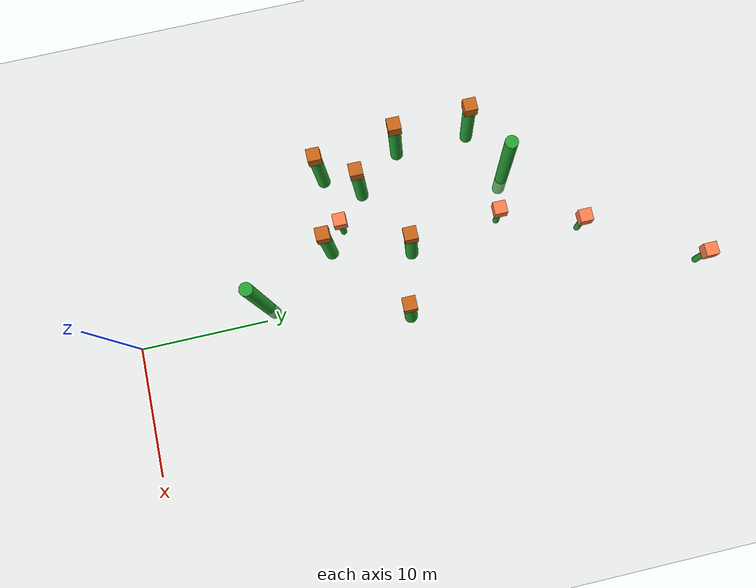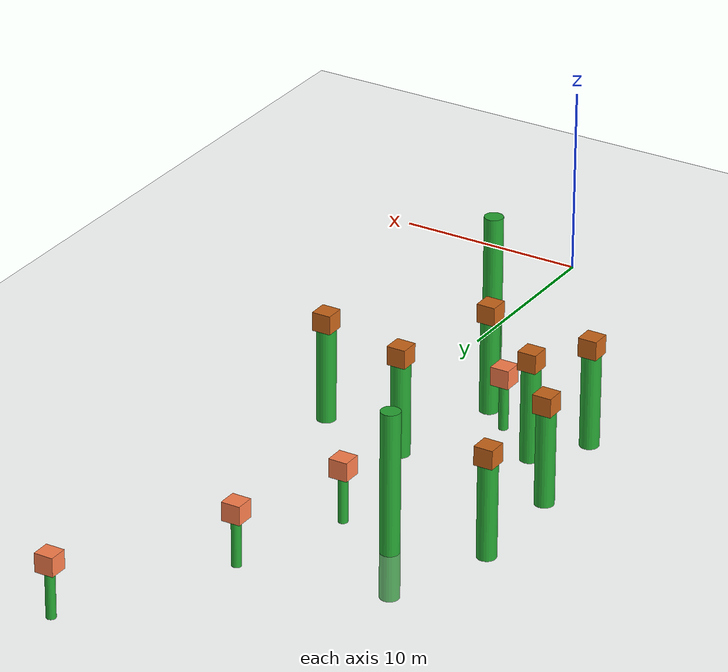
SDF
<sdf version="1.7">
 <world name="default">
  <model name="ground_plane">
   <static>1</static>
   <link name="link">
    <collision name="collision">
     <geometry><plane><normal>0 0 1</normal><size>100 100</size></plane></geometry>
     <surface>
      <contact><collide_bitmask>65535</collide_bitmask></contact>
      <friction><ode><mu>100</mu><mu2>50</mu2></ode></friction>
     </surface>
    </collision>
    <visual name="visual">
     <cast_shadows>0</cast_shadows>
     <geometry><plane><normal>0 0 1</normal><size>100 100</size></plane></geometry>
     <material>
      <script><uri>file://media/materials/scripts/gazebo.material</uri><name>Gazebo/Grey</name></script>
     </material>
    </visual>
   </link>
  </model>
  <model name="unit_cylinder_green_2_clone_clone_2">
   <link name="link">
    <inertial>
     <mass>1</mass>
     <inertia><ixx>0.145833</ixx><ixy>0</ixy><ixz>0</ixz><iyy>0.145833</iyy><iyz>0</iyz><izz>0.125</izz></inertia>
    </inertial>
    <visual name="visual">
     <geometry><cylinder><radius>0.5</radius><length>10</length></cylinder></geometry>
     <material>
      <script><name>Gazebo/Green</name><uri>file://media/materials/scripts/gazebo.material</uri></script>
      <shader type="pixel"><normal_map>__default__</normal_map></shader>
      <ambient>0 1 0.3 1</ambient>
      <diffuse>0.7 0.7 0.7 1</diffuse>
      <specular>0.01 0.01 0.01 1</specular>
      <emissive>0 0 0 1</emissive>
     </material>
    </visual>
    <collision name="collision">
     <geometry><cylinder><radius>0.5</radius><length>5</length></cylinder></geometry>
     <surface>
      <friction>
       <ode><mu>1</mu><mu2>1</mu2><fdir1>0 0 0</fdir1><slip1>0</slip1><slip2>0</slip2></ode>
       <torsional>
        <coefficient>1</coefficient>
        <patch_radius>0</patch_radius>
        <surface_radius>0</surface_radius>
        <use_patch_radius>1</use_patch_radius>
        <ode><slip>0</slip></ode>
       </torsional>
      </friction>
      <bounce><restitution_coefficient>0</restitution_coefficient><threshold>1e+06</threshold></bounce>
      <contact>
       <collide_without_contact>0</collide_without_contact>
       <collide_without_contact_bitmask>1</collide_without_contact_bitmask>
       <collide_bitmask>1</collide_bitmask>
       <ode>
        <soft_cfm>0</soft_cfm>
        <soft_erp>0.2</soft_erp>
        <kp>1e+13</kp>
        <kd>1</kd>
        <max_vel>0.01</max_vel>
        <min_depth>0</min_depth>
       </ode>
       <bullet>
        <split_impulse>1</split_impulse>
        <split_impulse_penetration_threshold>-0.01</split_impulse_penetration_threshold>
        <soft_cfm>0</soft_cfm>
        <soft_erp>0.2</soft_erp>
        <kp>1e+13</kp>
        <kd>1</kd>
       </bullet>
      </contact>
     </surface>
    </collision>
   </link>
   <static>1</static>
   <pose>-1.02596 10.3095 2.5 0 0 -0.000967</pose>
  </model>
  <model name="unit_cylinder_green_2_clone_clone_10">
   <link name="link">
    <inertial>
     <mass>1</mass>
     <inertia><ixx>0.145833</ixx><ixy>0</ixy><ixz>0</ixz><iyy>0.145833</iyy><iyz>0</iyz><izz>0.125</izz></inertia>
    </inertial>
    <visual name="visual">
     <geometry><cylinder><radius>0.5</radius><length>10</length></cylinder></geometry>
     <material>
      <script><name>Gazebo/Green</name><uri>file://media/materials/scripts/gazebo.material</uri></script>
      <shader type="pixel"><normal_map>__default__</normal_map></shader>
      <ambient>0 1 0.3 1</ambient>
      <diffuse>0.7 0.7 0.7 1</diffuse>
      <specular>0.01 0.01 0.01 1</specular>
      <emissive>0 0 0 1</emissive>
     </material>
    </visual>
    <collision name="collision">
     <geometry><cylinder><radius>0.5</radius><length>5</length></cylinder></geometry>
     <surface>
      <friction>
       <ode><mu>1</mu><mu2>1</mu2><fdir1>0 0 0</fdir1><slip1>0</slip1><slip2>0</slip2></ode>
       <torsional>
        <coefficient>1</coefficient>
        <patch_radius>0</patch_radius>
        <surface_radius>0</surface_radius>
        <use_patch_radius>1</use_patch_radius>
        <ode><slip>0</slip></ode>
       </torsional>
      </friction>
      <bounce><restitution_coefficient>0</restitution_coefficient><threshold>1e+06</threshold></bounce>
      <contact>
       <collide_without_contact>0</collide_without_contact>
       <collide_without_contact_bitmask>1</collide_without_contact_bitmask>
       <collide_bitmask>1</collide_bitmask>
       <ode>
        <soft_cfm>0</soft_cfm>
        <soft_erp>0.2</soft_erp>
        <kp>1e+13</kp>
        <kd>1</kd>
        <max_vel>0.01</max_vel>
        <min_depth>0</min_depth>
       </ode>
       <bullet>
        <split_impulse>1</split_impulse>
        <split_impulse_penetration_threshold>-0.01</split_impulse_penetration_threshold>
        <soft_cfm>0</soft_cfm>
        <soft_erp>0.2</soft_erp>
        <kp>1e+13</kp>
        <kd>1</kd>
       </bullet>
      </contact>
     </surface>
    </collision>
   </link>
   <static>1</static>
   <pose>-7.30814 30.7862 2.5 0 0 -0.000967</pose>
  </model>
  <model name="unit_cylinder_green_2_clone_clone_3_clone_0_clone_0_clone_1">
   <link name="link">
    <inertial>
     <mass>1</mass>
     <inertia><ixx>0.145833</ixx><ixy>0</ixy><ixz>0</ixz><iyy>0.145833</iyy><iyz>0</iyz><izz>0.125</izz></inertia>
    </inertial>
    <visual name="visual">
     <geometry><cylinder><radius>0.5</radius><length>5</length></cylinder></geometry>
     <material>
      <script><name>Gazebo/Green</name><uri>file://media/materials/scripts/gazebo.material</uri></script>
      <shader type="pixel"><normal_map>__default__</normal_map></shader>
      <ambient>0 1 0.3 1</ambient>
      <diffuse>0.7 0.7 0.7 1</diffuse>
      <specular>0.01 0.01 0.01 1</specular>
      <emissive>0 0 0 1</emissive>
     </material>
    </visual>
    <collision name="collision">
     <geometry><cylinder><radius>0.5</radius><length>5</length></cylinder></geometry>
     <surface>
      <friction>
       <ode><mu>1</mu><mu2>1</mu2><fdir1>0 0 0</fdir1><slip1>0</slip1><slip2>0</slip2></ode>
       <torsional>
        <coefficient>1</coefficient>
        <patch_radius>0</patch_radius>
        <surface_radius>0</surface_radius>
        <use_patch_radius>1</use_patch_radius>
        <ode><slip>0</slip></ode>
       </torsional>
      </friction>
      <bounce><restitution_coefficient>0</restitution_coefficient><threshold>1e+06</threshold></bounce>
      <contact>
       <collide_without_contact>0</collide_without_contact>
       <collide_without_contact_bitmask>1</collide_without_contact_bitmask>
       <collide_bitmask>1</collide_bitmask>
       <ode>
        <soft_cfm>0</soft_cfm>
        <soft_erp>0.2</soft_erp>
        <kp>1e+13</kp>
        <kd>1</kd>
        <max_vel>0.01</max_vel>
        <min_depth>0</min_depth>
       </ode>
       <bullet>
        <split_impulse>1</split_impulse>
        <split_impulse_penetration_threshold>-0.01</split_impulse_penetration_threshold>
        <soft_cfm>0</soft_cfm>
        <soft_erp>0.2</soft_erp>
        <kp>1e+13</kp>
        <kd>1</kd>
       </bullet>
      </contact>
     </surface>
    </collision>
   </link>
   <link name="link_3">
    <inertial>
     <mass>1</mass>
     <inertia>
      <ixx>0.166667</ixx>
      <ixy>0</ixy>
      <ixz>0</ixz>
      <iyy>0.166667</iyy>
      <iyz>0</iyz>
      <izz>0.166667</izz>
     </inertia>
    </inertial>
    <pose>0 0 3 0 -0 0.000935</pose>
    <visual name="visual">
     <geometry><box><size>1 1 1</size></box></geometry>
     <material>
      <lighting>1</lighting>
      <script><uri>file://media/materials/scripts/gazebo.material</uri><name>Gazebo/Grey</name></script>
      <shader type="pixel"><normal_map>__default__</normal_map></shader>
      <ambient>0.8 0.4 0.1 1</ambient>
      <diffuse>0.7 0.7 0.7 1</diffuse>
      <specular>0.01 0.01 0.01 1</specular>
      <emissive>0 0 0 1</emissive>
     </material>
    </visual>
    <collision name="collision">
     <geometry><box><size>1 1 1</size></box></geometry>
     <surface>
      <friction>
       <ode><mu>1</mu><mu2>1</mu2><fdir1>0 0 0</fdir1><slip1>0</slip1><slip2>0</slip2></ode>
       <torsional>
        <coefficient>1</coefficient>
        <patch_radius>0</patch_radius>
        <surface_radius>0</surface_radius>
        <use_patch_radius>1</use_patch_radius>
        <ode><slip>0</slip></ode>
       </torsional>
      </friction>
      <bounce><restitution_coefficient>0</restitution_coefficient><threshold>1e+06</threshold></bounce>
      <contact>
       <collide_without_contact>0</collide_without_contact>
       <collide_without_contact_bitmask>1</collide_without_contact_bitmask>
       <collide_bitmask>1</collide_bitmask>
       <ode>
        <soft_cfm>0</soft_cfm>
        <soft_erp>0.2</soft_erp>
        <kp>1e+13</kp>
        <kd>1</kd>
        <max_vel>0.01</max_vel>
        <min_depth>0</min_depth>
       </ode>
       <bullet>
        <split_impulse>1</split_impulse>
        <split_impulse_penetration_threshold>-0.01</split_impulse_penetration_threshold>
        <soft_cfm>0</soft_cfm>
        <soft_erp>0.2</soft_erp>
        <kp>1e+13</kp>
        <kd>1</kd>
       </bullet>
      </contact>
     </surface>
    </collision>
   </link>
   <static>1</static>
   <pose>-10.2199 16.6539 2.49999 0 0 -0.000935</pose>
  </model>
  <model name="unit_cylinder_green_2_clone_clone_3_clone_0_clone_0_clone_2">
   <link name="link">
    <inertial>
     <mass>1</mass>
     <inertia><ixx>0.145833</ixx><ixy>0</ixy><ixz>0</ixz><iyy>0.145833</iyy><iyz>0</iyz><izz>0.125</izz></inertia>
    </inertial>
    <visual name="visual">
     <geometry><cylinder><radius>0.5</radius><length>5</length></cylinder></geometry>
     <material>
      <script><name>Gazebo/Green</name><uri>file://media/materials/scripts/gazebo.material</uri></script>
      <shader type="pixel"><normal_map>__default__</normal_map></shader>
      <ambient>0 1 0.3 1</ambient>
      <diffuse>0.7 0.7 0.7 1</diffuse>
      <specular>0.01 0.01 0.01 1</specular>
      <emissive>0 0 0 1</emissive>
     </material>
    </visual>
    <collision name="collision">
     <geometry><cylinder><radius>0.5</radius><length>5</length></cylinder></geometry>
     <surface>
      <friction>
       <ode><mu>1</mu><mu2>1</mu2><fdir1>0 0 0</fdir1><slip1>0</slip1><slip2>0</slip2></ode>
       <torsional>
        <coefficient>1</coefficient>
        <patch_radius>0</patch_radius>
        <surface_radius>0</surface_radius>
        <use_patch_radius>1</use_patch_radius>
        <ode><slip>0</slip></ode>
       </torsional>
      </friction>
      <bounce><restitution_coefficient>0</restitution_coefficient><threshold>1e+06</threshold></bounce>
      <contact>
       <collide_without_contact>0</collide_without_contact>
       <collide_without_contact_bitmask>1</collide_without_contact_bitmask>
       <collide_bitmask>1</collide_bitmask>
       <ode>
        <soft_cfm>0</soft_cfm>
        <soft_erp>0.2</soft_erp>
        <kp>1e+13</kp>
        <kd>1</kd>
        <max_vel>0.01</max_vel>
        <min_depth>0</min_depth>
       </ode>
       <bullet>
        <split_impulse>1</split_impulse>
        <split_impulse_penetration_threshold>-0.01</split_impulse_penetration_threshold>
        <soft_cfm>0</soft_cfm>
        <soft_erp>0.2</soft_erp>
        <kp>1e+13</kp>
        <kd>1</kd>
       </bullet>
      </contact>
     </surface>
    </collision>
   </link>
   <link name="link_3">
    <inertial>
     <mass>1</mass>
     <inertia>
      <ixx>0.166667</ixx>
      <ixy>0</ixy>
      <ixz>0</ixz>
      <iyy>0.166667</iyy>
      <iyz>0</iyz>
      <izz>0.166667</izz>
     </inertia>
    </inertial>
    <pose>0 0 3 0 -0 0.000935</pose>
    <visual name="visual">
     <geometry><box><size>1 1 1</size></box></geometry>
     <material>
      <lighting>1</lighting>
      <script><uri>file://media/materials/scripts/gazebo.material</uri><name>Gazebo/Grey</name></script>
      <shader type="pixel"><normal_map>__default__</normal_map></shader>
      <ambient>0.8 0.4 0.1 1</ambient>
      <diffuse>0.7 0.7 0.7 1</diffuse>
      <specular>0.01 0.01 0.01 1</specular>
      <emissive>0 0 0 1</emissive>
     </material>
    </visual>
    <collision name="collision">
     <geometry><box><size>1 1 1</size></box></geometry>
     <surface>
      <friction>
       <ode><mu>1</mu><mu2>1</mu2><fdir1>0 0 0</fdir1><slip1>0</slip1><slip2>0</slip2></ode>
       <torsional>
        <coefficient>1</coefficient>
        <patch_radius>0</patch_radius>
        <surface_radius>0</surface_radius>
        <use_patch_radius>1</use_patch_radius>
        <ode><slip>0</slip></ode>
       </torsional>
      </friction>
      <bounce><restitution_coefficient>0</restitution_coefficient><threshold>1e+06</threshold></bounce>
      <contact>
       <collide_without_contact>0</collide_without_contact>
       <collide_without_contact_bitmask>1</collide_without_contact_bitmask>
       <collide_bitmask>1</collide_bitmask>
       <ode>
        <soft_cfm>0</soft_cfm>
        <soft_erp>0.2</soft_erp>
        <kp>1e+13</kp>
        <kd>1</kd>
        <max_vel>0.01</max_vel>
        <min_depth>0</min_depth>
       </ode>
       <bullet>
        <split_impulse>1</split_impulse>
        <split_impulse_penetration_threshold>-0.01</split_impulse_penetration_threshold>
        <soft_cfm>0</soft_cfm>
        <soft_erp>0.2</soft_erp>
        <kp>1e+13</kp>
        <kd>1</kd>
       </bullet>
      </contact>
     </surface>
    </collision>
   </link>
   <static>1</static>
   <pose>-4.21077 16.0878 2.49999 0 0 -0.000935</pose>
  </model>
  <model name="unit_cylinder_green_2_clone_clone_3_clone_0_clone_0_clone_4">
   <link name="link">
    <inertial>
     <mass>1</mass>
     <inertia><ixx>0.145833</ixx><ixy>0</ixy><ixz>0</ixz><iyy>0.145833</iyy><iyz>0</iyz><izz>0.125</izz></inertia>
    </inertial>
    <visual name="visual">
     <geometry><cylinder><radius>0.5</radius><length>5</length></cylinder></geometry>
     <material>
      <script><name>Gazebo/Green</name><uri>file://media/materials/scripts/gazebo.material</uri></script>
      <shader type="pixel"><normal_map>__default__</normal_map></shader>
      <ambient>0 1 0.3 1</ambient>
      <diffuse>0.7 0.7 0.7 1</diffuse>
      <specular>0.01 0.01 0.01 1</specular>
      <emissive>0 0 0 1</emissive>
     </material>
    </visual>
    <collision name="collision">
     <geometry><cylinder><radius>0.5</radius><length>5</length></cylinder></geometry>
     <surface>
      <friction>
       <ode><mu>1</mu><mu2>1</mu2><fdir1>0 0 0</fdir1><slip1>0</slip1><slip2>0</slip2></ode>
       <torsional>
        <coefficient>1</coefficient>
        <patch_radius>0</patch_radius>
        <surface_radius>0</surface_radius>
        <use_patch_radius>1</use_patch_radius>
        <ode><slip>0</slip></ode>
       </torsional>
      </friction>
      <bounce><restitution_coefficient>0</restitution_coefficient><threshold>1e+06</threshold></bounce>
      <contact>
       <collide_without_contact>0</collide_without_contact>
       <collide_without_contact_bitmask>1</collide_without_contact_bitmask>
       <collide_bitmask>1</collide_bitmask>
       <ode>
        <soft_cfm>0</soft_cfm>
        <soft_erp>0.2</soft_erp>
        <kp>1e+13</kp>
        <kd>1</kd>
        <max_vel>0.01</max_vel>
        <min_depth>0</min_depth>
       </ode>
       <bullet>
        <split_impulse>1</split_impulse>
        <split_impulse_penetration_threshold>-0.01</split_impulse_penetration_threshold>
        <soft_cfm>0</soft_cfm>
        <soft_erp>0.2</soft_erp>
        <kp>1e+13</kp>
        <kd>1</kd>
       </bullet>
      </contact>
     </surface>
    </collision>
   </link>
   <link name="link_3">
    <inertial>
     <mass>1</mass>
     <inertia>
      <ixx>0.166667</ixx>
      <ixy>0</ixy>
      <ixz>0</ixz>
      <iyy>0.166667</iyy>
      <iyz>0</iyz>
      <izz>0.166667</izz>
     </inertia>
    </inertial>
    <pose>0 0 3 0 -0 0.000935</pose>
    <visual name="visual">
     <geometry><box><size>1 1 1</size></box></geometry>
     <material>
      <lighting>1</lighting>
      <script><uri>file://media/materials/scripts/gazebo.material</uri><name>Gazebo/Grey</name></script>
      <shader type="pixel"><normal_map>__default__</normal_map></shader>
      <ambient>0.8 0.4 0.1 1</ambient>
      <diffuse>0.7 0.7 0.7 1</diffuse>
      <specular>0.01 0.01 0.01 1</specular>
      <emissive>0 0 0 1</emissive>
     </material>
    </visual>
    <collision name="collision">
     <geometry><box><size>1 1 1</size></box></geometry>
     <surface>
      <friction>
       <ode><mu>1</mu><mu2>1</mu2><fdir1>0 0 0</fdir1><slip1>0</slip1><slip2>0</slip2></ode>
       <torsional>
        <coefficient>1</coefficient>
        <patch_radius>0</patch_radius>
        <surface_radius>0</surface_radius>
        <use_patch_radius>1</use_patch_radius>
        <ode><slip>0</slip></ode>
       </torsional>
      </friction>
      <bounce><restitution_coefficient>0</restitution_coefficient><threshold>1e+06</threshold></bounce>
      <contact>
       <collide_without_contact>0</collide_without_contact>
       <collide_without_contact_bitmask>1</collide_without_contact_bitmask>
       <collide_bitmask>1</collide_bitmask>
       <ode>
        <soft_cfm>0</soft_cfm>
        <soft_erp>0.2</soft_erp>
        <kp>1e+13</kp>
        <kd>1</kd>
        <max_vel>0.01</max_vel>
        <min_depth>0</min_depth>
       </ode>
       <bullet>
        <split_impulse>1</split_impulse>
        <split_impulse_penetration_threshold>-0.01</split_impulse_penetration_threshold>
        <soft_cfm>0</soft_cfm>
        <soft_erp>0.2</soft_erp>
        <kp>1e+13</kp>
        <kd>1</kd>
       </bullet>
      </contact>
     </surface>
    </collision>
   </link>
   <static>1</static>
   <pose>-2.78766 22.2941 2.49999 0 0 -0.000935</pose>
  </model>
  <model name="unit_cylinder_green_2_clone_clone_3_clone_0_clone_0_clone_18">
   <link name="link">
    <inertial>
     <mass>1</mass>
     <inertia><ixx>0.145833</ixx><ixy>0</ixy><ixz>0</ixz><iyy>0.145833</iyy><iyz>0</iyz><izz>0.125</izz></inertia>
    </inertial>
    <visual name="visual">
     <geometry><cylinder><radius>0.5</radius><length>5</length></cylinder></geometry>
     <material>
      <script><name>Gazebo/Green</name><uri>file://media/materials/scripts/gazebo.material</uri></script>
      <shader type="pixel"><normal_map>__default__</normal_map></shader>
      <ambient>0 1 0.3 1</ambient>
      <diffuse>0.7 0.7 0.7 1</diffuse>
      <specular>0.01 0.01 0.01 1</specular>
      <emissive>0 0 0 1</emissive>
     </material>
    </visual>
    <collision name="collision">
     <geometry><cylinder><radius>0.5</radius><length>5</length></cylinder></geometry>
     <surface>
      <friction>
       <ode><mu>1</mu><mu2>1</mu2><fdir1>0 0 0</fdir1><slip1>0</slip1><slip2>0</slip2></ode>
       <torsional>
        <coefficient>1</coefficient>
        <patch_radius>0</patch_radius>
        <surface_radius>0</surface_radius>
        <use_patch_radius>1</use_patch_radius>
        <ode><slip>0</slip></ode>
       </torsional>
      </friction>
      <bounce><restitution_coefficient>0</restitution_coefficient><threshold>1e+06</threshold></bounce>
      <contact>
       <collide_without_contact>0</collide_without_contact>
       <collide_without_contact_bitmask>1</collide_without_contact_bitmask>
       <collide_bitmask>1</collide_bitmask>
       <ode>
        <soft_cfm>0</soft_cfm>
        <soft_erp>0.2</soft_erp>
        <kp>1e+13</kp>
        <kd>1</kd>
        <max_vel>0.01</max_vel>
        <min_depth>0</min_depth>
       </ode>
       <bullet>
        <split_impulse>1</split_impulse>
        <split_impulse_penetration_threshold>-0.01</split_impulse_penetration_threshold>
        <soft_cfm>0</soft_cfm>
        <soft_erp>0.2</soft_erp>
        <kp>1e+13</kp>
        <kd>1</kd>
       </bullet>
      </contact>
     </surface>
    </collision>
   </link>
   <link name="link_3">
    <inertial>
     <mass>1</mass>
     <inertia>
      <ixx>0.166667</ixx>
      <ixy>0</ixy>
      <ixz>0</ixz>
      <iyy>0.166667</iyy>
      <iyz>0</iyz>
      <izz>0.166667</izz>
     </inertia>
    </inertial>
    <pose>0 0 3 0 -0 0.000935</pose>
    <visual name="visual">
     <geometry><box><size>1 1 1</size></box></geometry>
     <material>
      <lighting>1</lighting>
      <script><uri>file://media/materials/scripts/gazebo.material</uri><name>Gazebo/Grey</name></script>
      <shader type="pixel"><normal_map>__default__</normal_map></shader>
      <ambient>0.8 0.4 0.1 1</ambient>
      <diffuse>0.7 0.7 0.7 1</diffuse>
      <specular>0.01 0.01 0.01 1</specular>
      <emissive>0 0 0 1</emissive>
     </material>
    </visual>
    <collision name="collision">
     <geometry><box><size>1 1 1</size></box></geometry>
     <surface>
      <friction>
       <ode><mu>1</mu><mu2>1</mu2><fdir1>0 0 0</fdir1><slip1>0</slip1><slip2>0</slip2></ode>
       <torsional>
        <coefficient>1</coefficient>
        <patch_radius>0</patch_radius>
        <surface_radius>0</surface_radius>
        <use_patch_radius>1</use_patch_radius>
        <ode><slip>0</slip></ode>
       </torsional>
      </friction>
      <bounce><restitution_coefficient>0</restitution_coefficient><threshold>1e+06</threshold></bounce>
      <contact>
       <collide_without_contact>0</collide_without_contact>
       <collide_without_contact_bitmask>1</collide_without_contact_bitmask>
       <collide_bitmask>1</collide_bitmask>
       <ode>
        <soft_cfm>0</soft_cfm>
        <soft_erp>0.2</soft_erp>
        <kp>1e+13</kp>
        <kd>1</kd>
        <max_vel>0.01</max_vel>
        <min_depth>0</min_depth>
       </ode>
       <bullet>
        <split_impulse>1</split_impulse>
        <split_impulse_penetration_threshold>-0.01</split_impulse_penetration_threshold>
        <soft_cfm>0</soft_cfm>
        <soft_erp>0.2</soft_erp>
        <kp>1e+13</kp>
        <kd>1</kd>
       </bullet>
      </contact>
     </surface>
    </collision>
   </link>
   <static>1</static>
   <pose>-11.4448 28.8184 2.49999 0 0 -0.000935</pose>
  </model>
  <model name="unit_cylinder_green_2_clone_clone_3_clone_0_clone_0_clone_19">
   <link name="link">
    <inertial>
     <mass>1</mass>
     <inertia><ixx>0.145833</ixx><ixy>0</ixy><ixz>0</ixz><iyy>0.145833</iyy><iyz>0</iyz><izz>0.125</izz></inertia>
    </inertial>
    <visual name="visual">
     <geometry><cylinder><radius>0.5</radius><length>5</length></cylinder></geometry>
     <material>
      <script><name>Gazebo/Green</name><uri>file://media/materials/scripts/gazebo.material</uri></script>
      <shader type="pixel"><normal_map>__default__</normal_map></shader>
      <ambient>0 1 0.3 1</ambient>
      <diffuse>0.7 0.7 0.7 1</diffuse>
      <specular>0.01 0.01 0.01 1</specular>
      <emissive>0 0 0 1</emissive>
     </material>
    </visual>
    <collision name="collision">
     <geometry><cylinder><radius>0.5</radius><length>5</length></cylinder></geometry>
     <surface>
      <friction>
       <ode><mu>1</mu><mu2>1</mu2><fdir1>0 0 0</fdir1><slip1>0</slip1><slip2>0</slip2></ode>
       <torsional>
        <coefficient>1</coefficient>
        <patch_radius>0</patch_radius>
        <surface_radius>0</surface_radius>
        <use_patch_radius>1</use_patch_radius>
        <ode><slip>0</slip></ode>
       </torsional>
      </friction>
      <bounce><restitution_coefficient>0</restitution_coefficient><threshold>1e+06</threshold></bounce>
      <contact>
       <collide_without_contact>0</collide_without_contact>
       <collide_without_contact_bitmask>1</collide_without_contact_bitmask>
       <collide_bitmask>1</collide_bitmask>
       <ode>
        <soft_cfm>0</soft_cfm>
        <soft_erp>0.2</soft_erp>
        <kp>1e+13</kp>
        <kd>1</kd>
        <max_vel>0.01</max_vel>
        <min_depth>0</min_depth>
       </ode>
       <bullet>
        <split_impulse>1</split_impulse>
        <split_impulse_penetration_threshold>-0.01</split_impulse_penetration_threshold>
        <soft_cfm>0</soft_cfm>
        <soft_erp>0.2</soft_erp>
        <kp>1e+13</kp>
        <kd>1</kd>
       </bullet>
      </contact>
     </surface>
    </collision>
   </link>
   <link name="link_3">
    <inertial>
     <mass>1</mass>
     <inertia>
      <ixx>0.166667</ixx>
      <ixy>0</ixy>
      <ixz>0</ixz>
      <iyy>0.166667</iyy>
      <iyz>0</iyz>
      <izz>0.166667</izz>
     </inertia>
    </inertial>
    <pose>0 0 3 0 -0 0.000935</pose>
    <visual name="visual">
     <geometry><box><size>1 1 1</size></box></geometry>
     <material>
      <lighting>1</lighting>
      <script><uri>file://media/materials/scripts/gazebo.material</uri><name>Gazebo/Grey</name></script>
      <shader type="pixel"><normal_map>__default__</normal_map></shader>
      <ambient>0.8 0.4 0.1 1</ambient>
      <diffuse>0.7 0.7 0.7 1</diffuse>
      <specular>0.01 0.01 0.01 1</specular>
      <emissive>0 0 0 1</emissive>
     </material>
    </visual>
    <collision name="collision">
     <geometry><box><size>1 1 1</size></box></geometry>
     <surface>
      <friction>
       <ode><mu>1</mu><mu2>1</mu2><fdir1>0 0 0</fdir1><slip1>0</slip1><slip2>0</slip2></ode>
       <torsional>
        <coefficient>1</coefficient>
        <patch_radius>0</patch_radius>
        <surface_radius>0</surface_radius>
        <use_patch_radius>1</use_patch_radius>
        <ode><slip>0</slip></ode>
       </torsional>
      </friction>
      <bounce><restitution_coefficient>0</restitution_coefficient><threshold>1e+06</threshold></bounce>
      <contact>
       <collide_without_contact>0</collide_without_contact>
       <collide_without_contact_bitmask>1</collide_without_contact_bitmask>
       <collide_bitmask>1</collide_bitmask>
       <ode>
        <soft_cfm>0</soft_cfm>
        <soft_erp>0.2</soft_erp>
        <kp>1e+13</kp>
        <kd>1</kd>
        <max_vel>0.01</max_vel>
        <min_depth>0</min_depth>
       </ode>
       <bullet>
        <split_impulse>1</split_impulse>
        <split_impulse_penetration_threshold>-0.01</split_impulse_penetration_threshold>
        <soft_cfm>0</soft_cfm>
        <soft_erp>0.2</soft_erp>
        <kp>1e+13</kp>
        <kd>1</kd>
       </bullet>
      </contact>
     </surface>
    </collision>
   </link>
   <static>1</static>
   <pose>-11.2302 22.9274 2.49999 0 0 -0.000935</pose>
  </model>
  <model name="unit_cylinder_green_2_clone_clone_3_clone_0_clone_0_clone_20">
   <link name="link">
    <inertial>
     <mass>1</mass>
     <inertia><ixx>0.145833</ixx><ixy>0</ixy><ixz>0</ixz><iyy>0.145833</iyy><iyz>0</iyz><izz>0.125</izz></inertia>
    </inertial>
    <visual name="visual">
     <geometry><cylinder><radius>0.5</radius><length>5</length></cylinder></geometry>
     <material>
      <script><name>Gazebo/Green</name><uri>file://media/materials/scripts/gazebo.material</uri></script>
      <shader type="pixel"><normal_map>__default__</normal_map></shader>
      <ambient>0 1 0.3 1</ambient>
      <diffuse>0.7 0.7 0.7 1</diffuse>
      <specular>0.01 0.01 0.01 1</specular>
      <emissive>0 0 0 1</emissive>
     </material>
    </visual>
    <collision name="collision">
     <geometry><cylinder><radius>0.5</radius><length>5</length></cylinder></geometry>
     <surface>
      <friction>
       <ode><mu>1</mu><mu2>1</mu2><fdir1>0 0 0</fdir1><slip1>0</slip1><slip2>0</slip2></ode>
       <torsional>
        <coefficient>1</coefficient>
        <patch_radius>0</patch_radius>
        <surface_radius>0</surface_radius>
        <use_patch_radius>1</use_patch_radius>
        <ode><slip>0</slip></ode>
       </torsional>
      </friction>
      <bounce><restitution_coefficient>0</restitution_coefficient><threshold>1e+06</threshold></bounce>
      <contact>
       <collide_without_contact>0</collide_without_contact>
       <collide_without_contact_bitmask>1</collide_without_contact_bitmask>
       <collide_bitmask>1</collide_bitmask>
       <ode>
        <soft_cfm>0</soft_cfm>
        <soft_erp>0.2</soft_erp>
        <kp>1e+13</kp>
        <kd>1</kd>
        <max_vel>0.01</max_vel>
        <min_depth>0</min_depth>
       </ode>
       <bullet>
        <split_impulse>1</split_impulse>
        <split_impulse_penetration_threshold>-0.01</split_impulse_penetration_threshold>
        <soft_cfm>0</soft_cfm>
        <soft_erp>0.2</soft_erp>
        <kp>1e+13</kp>
        <kd>1</kd>
       </bullet>
      </contact>
     </surface>
    </collision>
   </link>
   <link name="link_3">
    <inertial>
     <mass>1</mass>
     <inertia>
      <ixx>0.166667</ixx>
      <ixy>0</ixy>
      <ixz>0</ixz>
      <iyy>0.166667</iyy>
      <iyz>0</iyz>
      <izz>0.166667</izz>
     </inertia>
    </inertial>
    <pose>0 0 3 0 -0 0.000935</pose>
    <visual name="visual">
     <geometry><box><size>1 1 1</size></box></geometry>
     <material>
      <lighting>1</lighting>
      <script><uri>file://media/materials/scripts/gazebo.material</uri><name>Gazebo/Grey</name></script>
      <shader type="pixel"><normal_map>__default__</normal_map></shader>
      <ambient>0.8 0.4 0.1 1</ambient>
      <diffuse>0.7 0.7 0.7 1</diffuse>
      <specular>0.01 0.01 0.01 1</specular>
      <emissive>0 0 0 1</emissive>
     </material>
    </visual>
    <collision name="collision">
     <geometry><box><size>1 1 1</size></box></geometry>
     <surface>
      <friction>
       <ode><mu>1</mu><mu2>1</mu2><fdir1>0 0 0</fdir1><slip1>0</slip1><slip2>0</slip2></ode>
       <torsional>
        <coefficient>1</coefficient>
        <patch_radius>0</patch_radius>
        <surface_radius>0</surface_radius>
        <use_patch_radius>1</use_patch_radius>
        <ode><slip>0</slip></ode>
       </torsional>
      </friction>
      <bounce><restitution_coefficient>0</restitution_coefficient><threshold>1e+06</threshold></bounce>
      <contact>
       <collide_without_contact>0</collide_without_contact>
       <collide_without_contact_bitmask>1</collide_without_contact_bitmask>
       <collide_bitmask>1</collide_bitmask>
       <ode>
        <soft_cfm>0</soft_cfm>
        <soft_erp>0.2</soft_erp>
        <kp>1e+13</kp>
        <kd>1</kd>
        <max_vel>0.01</max_vel>
        <min_depth>0</min_depth>
       </ode>
       <bullet>
        <split_impulse>1</split_impulse>
        <split_impulse_penetration_threshold>-0.01</split_impulse_penetration_threshold>
        <soft_cfm>0</soft_cfm>
        <soft_erp>0.2</soft_erp>
        <kp>1e+13</kp>
        <kd>1</kd>
       </bullet>
      </contact>
     </surface>
    </collision>
   </link>
   <static>1</static>
   <pose>-8.4261 19.4362 2.49999 0 0 -0.000935</pose>
  </model>
  <model name="unit_cylinder_green_2_clone_clone_3_clone_0_clone_0_clone_31">
   <link name="link">
    <inertial>
     <mass>1</mass>
     <inertia><ixx>0.145833</ixx><ixy>0</ixy><ixz>0</ixz><iyy>0.145833</iyy><iyz>0</iyz><izz>0.125</izz></inertia>
    </inertial>
    <visual name="visual">
     <geometry><cylinder><radius>0.5</radius><length>5</length></cylinder></geometry>
     <material>
      <script><name>Gazebo/Green</name><uri>file://media/materials/scripts/gazebo.material</uri></script>
      <shader type="pixel"><normal_map>__default__</normal_map></shader>
      <ambient>0 1 0.3 1</ambient>
      <diffuse>0.7 0.7 0.7 1</diffuse>
      <specular>0.01 0.01 0.01 1</specular>
      <emissive>0 0 0 1</emissive>
     </material>
    </visual>
    <collision name="collision">
     <geometry><cylinder><radius>0.5</radius><length>5</length></cylinder></geometry>
     <surface>
      <friction>
       <ode><mu>1</mu><mu2>1</mu2><fdir1>0 0 0</fdir1><slip1>0</slip1><slip2>0</slip2></ode>
       <torsional>
        <coefficient>1</coefficient>
        <patch_radius>0</patch_radius>
        <surface_radius>0</surface_radius>
        <use_patch_radius>1</use_patch_radius>
        <ode><slip>0</slip></ode>
       </torsional>
      </friction>
      <bounce><restitution_coefficient>0</restitution_coefficient><threshold>1e+06</threshold></bounce>
      <contact>
       <collide_without_contact>0</collide_without_contact>
       <collide_without_contact_bitmask>1</collide_without_contact_bitmask>
       <collide_bitmask>1</collide_bitmask>
       <ode>
        <soft_cfm>0</soft_cfm>
        <soft_erp>0.2</soft_erp>
        <kp>1e+13</kp>
        <kd>1</kd>
        <max_vel>0.01</max_vel>
        <min_depth>0</min_depth>
       </ode>
       <bullet>
        <split_impulse>1</split_impulse>
        <split_impulse_penetration_threshold>-0.01</split_impulse_penetration_threshold>
        <soft_cfm>0</soft_cfm>
        <soft_erp>0.2</soft_erp>
        <kp>1e+13</kp>
        <kd>1</kd>
       </bullet>
      </contact>
     </surface>
    </collision>
   </link>
   <link name="link_3">
    <inertial>
     <mass>1</mass>
     <inertia>
      <ixx>0.166667</ixx>
      <ixy>0</ixy>
      <ixz>0</ixz>
      <iyy>0.166667</iyy>
      <iyz>0</iyz>
      <izz>0.166667</izz>
     </inertia>
    </inertial>
    <pose>0 0 3 0 -0 0.000935</pose>
    <visual name="visual">
     <geometry><box><size>1 1 1</size></box></geometry>
     <material>
      <lighting>1</lighting>
      <script><uri>file://media/materials/scripts/gazebo.material</uri><name>Gazebo/Grey</name></script>
      <shader type="pixel"><normal_map>__default__</normal_map></shader>
      <ambient>0.8 0.4 0.1 1</ambient>
      <diffuse>0.7 0.7 0.7 1</diffuse>
      <specular>0.01 0.01 0.01 1</specular>
      <emissive>0 0 0 1</emissive>
     </material>
    </visual>
    <collision name="collision">
     <geometry><box><size>1 1 1</size></box></geometry>
     <surface>
      <friction>
       <ode><mu>1</mu><mu2>1</mu2><fdir1>0 0 0</fdir1><slip1>0</slip1><slip2>0</slip2></ode>
       <torsional>
        <coefficient>1</coefficient>
        <patch_radius>0</patch_radius>
        <surface_radius>0</surface_radius>
        <use_patch_radius>1</use_patch_radius>
        <ode><slip>0</slip></ode>
       </torsional>
      </friction>
      <bounce><restitution_coefficient>0</restitution_coefficient><threshold>1e+06</threshold></bounce>
      <contact>
       <collide_without_contact>0</collide_without_contact>
       <collide_without_contact_bitmask>1</collide_without_contact_bitmask>
       <collide_bitmask>1</collide_bitmask>
       <ode>
        <soft_cfm>0</soft_cfm>
        <soft_erp>0.2</soft_erp>
        <kp>1e+13</kp>
        <kd>1</kd>
        <max_vel>0.01</max_vel>
        <min_depth>0</min_depth>
       </ode>
       <bullet>
        <split_impulse>1</split_impulse>
        <split_impulse_penetration_threshold>-0.01</split_impulse_penetration_threshold>
        <soft_cfm>0</soft_cfm>
        <soft_erp>0.2</soft_erp>
        <kp>1e+13</kp>
        <kd>1</kd>
       </bullet>
      </contact>
     </surface>
    </collision>
   </link>
   <static>1</static>
   <pose>2.19828 21.1108 2.49999 0 0 -0.000935</pose>
  </model>
  <model name="unit_cylinder_green_2_clone_clone_3_clone_0_clone_0_clone_46">
   <link name="link">
    <inertial>
     <mass>1</mass>
     <inertia><ixx>0.145833</ixx><ixy>0</ixy><ixz>0</ixz><iyy>0.145833</iyy><iyz>0</iyz><izz>0.125</izz></inertia>
    </inertial>
    <pose>0 0 -1.25 0 -0 0</pose>
    <visual name="visual">
     <geometry><cylinder><radius>0.25</radius><length>2.5</length></cylinder></geometry>
     <material>
      <script><name>Gazebo/Green</name><uri>file://media/materials/scripts/gazebo.material</uri></script>
      <shader type="pixel"><normal_map>__default__</normal_map></shader>
      <ambient>0 1 0.3 1</ambient>
      <diffuse>0.7 0.7 0.7 1</diffuse>
      <specular>0.01 0.01 0.01 1</specular>
      <emissive>0 0 0 1</emissive>
     </material>
    </visual>
    <collision name="collision">
     <geometry><cylinder><radius>0.5</radius><length>5</length></cylinder></geometry>
     <surface>
      <friction>
       <ode><mu>1</mu><mu2>1</mu2><fdir1>0 0 0</fdir1><slip1>0</slip1><slip2>0</slip2></ode>
       <torsional>
        <coefficient>1</coefficient>
        <patch_radius>0</patch_radius>
        <surface_radius>0</surface_radius>
        <use_patch_radius>1</use_patch_radius>
        <ode><slip>0</slip></ode>
       </torsional>
      </friction>
      <bounce><restitution_coefficient>0</restitution_coefficient><threshold>1e+06</threshold></bounce>
      <contact>
       <collide_without_contact>0</collide_without_contact>
       <collide_without_contact_bitmask>1</collide_without_contact_bitmask>
       <collide_bitmask>1</collide_bitmask>
       <ode>
        <soft_cfm>0</soft_cfm>
        <soft_erp>0.2</soft_erp>
        <kp>1e+13</kp>
        <kd>1</kd>
        <max_vel>0.01</max_vel>
        <min_depth>0</min_depth>
       </ode>
       <bullet>
        <split_impulse>1</split_impulse>
        <split_impulse_penetration_threshold>-0.01</split_impulse_penetration_threshold>
        <soft_cfm>0</soft_cfm>
        <soft_erp>0.2</soft_erp>
        <kp>1e+13</kp>
        <kd>1</kd>
       </bullet>
      </contact>
     </surface>
    </collision>
   </link>
   <link name="link_3">
    <inertial>
     <mass>1</mass>
     <inertia>
      <ixx>0.166667</ixx>
      <ixy>0</ixy>
      <ixz>0</ixz>
      <iyy>0.166667</iyy>
      <iyz>0</iyz>
      <izz>0.166667</izz>
     </inertia>
    </inertial>
    <pose>0 0 0.5 0 -0 0.000935</pose>
    <visual name="visual">
     <geometry><box><size>1 1 1</size></box></geometry>
     <material>
      <lighting>1</lighting>
      <script><uri>file://media/materials/scripts/gazebo.material</uri><name>Gazebo/Grey</name></script>
      <shader type="pixel"><normal_map>__default__</normal_map></shader>
      <ambient>1 0.5 0.3 1</ambient>
      <diffuse>0.7 0.7 0.7 1</diffuse>
      <specular>0.01 0.01 0.01 1</specular>
      <emissive>0 0 0 1</emissive>
     </material>
    </visual>
    <collision name="collision">
     <geometry><box><size>1 1 1</size></box></geometry>
     <surface>
      <friction>
       <ode><mu>1</mu><mu2>1</mu2><fdir1>0 0 0</fdir1><slip1>0</slip1><slip2>0</slip2></ode>
       <torsional>
        <coefficient>1</coefficient>
        <patch_radius>0</patch_radius>
        <surface_radius>0</surface_radius>
        <use_patch_radius>1</use_patch_radius>
        <ode><slip>0</slip></ode>
       </torsional>
      </friction>
      <bounce><restitution_coefficient>0</restitution_coefficient><threshold>1e+06</threshold></bounce>
      <contact>
       <collide_without_contact>0</collide_without_contact>
       <collide_without_contact_bitmask>1</collide_without_contact_bitmask>
       <collide_bitmask>1</collide_bitmask>
       <ode>
        <soft_cfm>0</soft_cfm>
        <soft_erp>0.2</soft_erp>
        <kp>1e+13</kp>
        <kd>1</kd>
        <max_vel>0.01</max_vel>
        <min_depth>0</min_depth>
       </ode>
       <bullet>
        <split_impulse>1</split_impulse>
        <split_impulse_penetration_threshold>-0.01</split_impulse_penetration_threshold>
        <soft_cfm>0</soft_cfm>
        <soft_erp>0.2</soft_erp>
        <kp>1e+13</kp>
        <kd>1</kd>
       </bullet>
      </contact>
     </surface>
    </collision>
   </link>
   <static>1</static>
   <pose>-5.76686 17.3712 2.49999 0 0 -0.000935</pose>
  </model>
  <model name="unit_cylinder_green_2_clone_clone_3_clone_0_clone_0_clone_84">
   <link name="link">
    <inertial>
     <mass>1</mass>
     <inertia><ixx>0.145833</ixx><ixy>0</ixy><ixz>0</ixz><iyy>0.145833</iyy><iyz>0</iyz><izz>0.125</izz></inertia>
    </inertial>
    <pose>0 0 -1.25 0 -0 0</pose>
    <visual name="visual">
     <geometry><cylinder><radius>0.25</radius><length>2.5</length></cylinder></geometry>
     <material>
      <script><name>Gazebo/Green</name><uri>file://media/materials/scripts/gazebo.material</uri></script>
      <shader type="pixel"><normal_map>__default__</normal_map></shader>
      <ambient>0 1 0.3 1</ambient>
      <diffuse>0.7 0.7 0.7 1</diffuse>
      <specular>0.01 0.01 0.01 1</specular>
      <emissive>0 0 0 1</emissive>
     </material>
    </visual>
    <collision name="collision">
     <geometry><cylinder><radius>0.5</radius><length>5</length></cylinder></geometry>
     <surface>
      <friction>
       <ode><mu>1</mu><mu2>1</mu2><fdir1>0 0 0</fdir1><slip1>0</slip1><slip2>0</slip2></ode>
       <torsional>
        <coefficient>1</coefficient>
        <patch_radius>0</patch_radius>
        <surface_radius>0</surface_radius>
        <use_patch_radius>1</use_patch_radius>
        <ode><slip>0</slip></ode>
       </torsional>
      </friction>
      <bounce><restitution_coefficient>0</restitution_coefficient><threshold>1e+06</threshold></bounce>
      <contact>
       <collide_without_contact>0</collide_without_contact>
       <collide_without_contact_bitmask>1</collide_without_contact_bitmask>
       <collide_bitmask>1</collide_bitmask>
       <ode>
        <soft_cfm>0</soft_cfm>
        <soft_erp>0.2</soft_erp>
        <kp>1e+13</kp>
        <kd>1</kd>
        <max_vel>0.01</max_vel>
        <min_depth>0</min_depth>
       </ode>
       <bullet>
        <split_impulse>1</split_impulse>
        <split_impulse_penetration_threshold>-0.01</split_impulse_penetration_threshold>
        <soft_cfm>0</soft_cfm>
        <soft_erp>0.2</soft_erp>
        <kp>1e+13</kp>
        <kd>1</kd>
       </bullet>
      </contact>
     </surface>
    </collision>
   </link>
   <link name="link_3">
    <inertial>
     <mass>1</mass>
     <inertia>
      <ixx>0.166667</ixx>
      <ixy>0</ixy>
      <ixz>0</ixz>
      <iyy>0.166667</iyy>
      <iyz>0</iyz>
      <izz>0.166667</izz>
     </inertia>
    </inertial>
    <pose>0 0 0.5 0 -0 0.000935</pose>
    <visual name="visual">
     <geometry><box><size>1 1 1</size></box></geometry>
     <material>
      <lighting>1</lighting>
      <script><uri>file://media/materials/scripts/gazebo.material</uri><name>Gazebo/Grey</name></script>
      <shader type="pixel"><normal_map>__default__</normal_map></shader>
      <ambient>1 0.5 0.3 1</ambient>
      <diffuse>0.7 0.7 0.7 1</diffuse>
      <specular>0.01 0.01 0.01 1</specular>
      <emissive>0 0 0 1</emissive>
     </material>
    </visual>
    <collision name="collision">
     <geometry><box><size>1 1 1</size></box></geometry>
     <surface>
      <friction>
       <ode><mu>1</mu><mu2>1</mu2><fdir1>0 0 0</fdir1><slip1>0</slip1><slip2>0</slip2></ode>
       <torsional>
        <coefficient>1</coefficient>
        <patch_radius>0</patch_radius>
        <surface_radius>0</surface_radius>
        <use_patch_radius>1</use_patch_radius>
        <ode><slip>0</slip></ode>
       </torsional>
      </friction>
      <bounce><restitution_coefficient>0</restitution_coefficient><threshold>1e+06</threshold></bounce>
      <contact>
       <collide_without_contact>0</collide_without_contact>
       <collide_without_contact_bitmask>1</collide_without_contact_bitmask>
       <collide_bitmask>1</collide_bitmask>
       <ode>
        <soft_cfm>0</soft_cfm>
        <soft_erp>0.2</soft_erp>
        <kp>1e+13</kp>
        <kd>1</kd>
        <max_vel>0.01</max_vel>
        <min_depth>0</min_depth>
       </ode>
       <bullet>
        <split_impulse>1</split_impulse>
        <split_impulse_penetration_threshold>-0.01</split_impulse_penetration_threshold>
        <soft_cfm>0</soft_cfm>
        <soft_erp>0.2</soft_erp>
        <kp>1e+13</kp>
        <kd>1</kd>
       </bullet>
      </contact>
     </surface>
    </collision>
   </link>
   <static>1</static>
   <pose>2.79904 44.2372 2.49999 0 0 -0.000935</pose>
  </model>
  <model name="unit_cylinder_green_2_clone_clone_3_clone_0_clone_0_clone_92">
   <link name="link">
    <inertial>
     <mass>1</mass>
     <inertia><ixx>0.145833</ixx><ixy>0</ixy><ixz>0</ixz><iyy>0.145833</iyy><iyz>0</iyz><izz>0.125</izz></inertia>
    </inertial>
    <pose>0 0 -1.25 0 -0 0</pose>
    <visual name="visual">
     <geometry><cylinder><radius>0.25</radius><length>2.5</length></cylinder></geometry>
     <material>
      <script><name>Gazebo/Green</name><uri>file://media/materials/scripts/gazebo.material</uri></script>
      <shader type="pixel"><normal_map>__default__</normal_map></shader>
      <ambient>0 1 0.3 1</ambient>
      <diffuse>0.7 0.7 0.7 1</diffuse>
      <specular>0.01 0.01 0.01 1</specular>
      <emissive>0 0 0 1</emissive>
     </material>
    </visual>
    <collision name="collision">
     <geometry><cylinder><radius>0.5</radius><length>5</length></cylinder></geometry>
     <surface>
      <friction>
       <ode><mu>1</mu><mu2>1</mu2><fdir1>0 0 0</fdir1><slip1>0</slip1><slip2>0</slip2></ode>
       <torsional>
        <coefficient>1</coefficient>
        <patch_radius>0</patch_radius>
        <surface_radius>0</surface_radius>
        <use_patch_radius>1</use_patch_radius>
        <ode><slip>0</slip></ode>
       </torsional>
      </friction>
      <bounce><restitution_coefficient>0</restitution_coefficient><threshold>1e+06</threshold></bounce>
      <contact>
       <collide_without_contact>0</collide_without_contact>
       <collide_without_contact_bitmask>1</collide_without_contact_bitmask>
       <collide_bitmask>1</collide_bitmask>
       <ode>
        <soft_cfm>0</soft_cfm>
        <soft_erp>0.2</soft_erp>
        <kp>1e+13</kp>
        <kd>1</kd>
        <max_vel>0.01</max_vel>
        <min_depth>0</min_depth>
       </ode>
       <bullet>
        <split_impulse>1</split_impulse>
        <split_impulse_penetration_threshold>-0.01</split_impulse_penetration_threshold>
        <soft_cfm>0</soft_cfm>
        <soft_erp>0.2</soft_erp>
        <kp>1e+13</kp>
        <kd>1</kd>
       </bullet>
      </contact>
     </surface>
    </collision>
   </link>
   <link name="link_3">
    <inertial>
     <mass>1</mass>
     <inertia>
      <ixx>0.166667</ixx>
      <ixy>0</ixy>
      <ixz>0</ixz>
      <iyy>0.166667</iyy>
      <iyz>0</iyz>
      <izz>0.166667</izz>
     </inertia>
    </inertial>
    <pose>0 0 0.5 0 -0 0.000935</pose>
    <visual name="visual">
     <geometry><box><size>1 1 1</size></box></geometry>
     <material>
      <lighting>1</lighting>
      <script><uri>file://media/materials/scripts/gazebo.material</uri><name>Gazebo/Grey</name></script>
      <shader type="pixel"><normal_map>__default__</normal_map></shader>
      <ambient>1 0.5 0.3 1</ambient>
      <diffuse>0.7 0.7 0.7 1</diffuse>
      <specular>0.01 0.01 0.01 1</specular>
      <emissive>0 0 0 1</emissive>
     </material>
    </visual>
    <collision name="collision">
     <geometry><box><size>1 1 1</size></box></geometry>
     <surface>
      <friction>
       <ode><mu>1</mu><mu2>1</mu2><fdir1>0 0 0</fdir1><slip1>0</slip1><slip2>0</slip2></ode>
       <torsional>
        <coefficient>1</coefficient>
        <patch_radius>0</patch_radius>
        <surface_radius>0</surface_radius>
        <use_patch_radius>1</use_patch_radius>
        <ode><slip>0</slip></ode>
       </torsional>
      </friction>
      <bounce><restitution_coefficient>0</restitution_coefficient><threshold>1e+06</threshold></bounce>
      <contact>
       <collide_without_contact>0</collide_without_contact>
       <collide_without_contact_bitmask>1</collide_without_contact_bitmask>
       <collide_bitmask>1</collide_bitmask>
       <ode>
        <soft_cfm>0</soft_cfm>
        <soft_erp>0.2</soft_erp>
        <kp>1e+13</kp>
        <kd>1</kd>
        <max_vel>0.01</max_vel>
        <min_depth>0</min_depth>
       </ode>
       <bullet>
        <split_impulse>1</split_impulse>
        <split_impulse_penetration_threshold>-0.01</split_impulse_penetration_threshold>
        <soft_cfm>0</soft_cfm>
        <soft_erp>0.2</soft_erp>
        <kp>1e+13</kp>
        <kd>1</kd>
       </bullet>
      </contact>
     </surface>
    </collision>
   </link>
   <static>1</static>
   <pose>-3.93149 29.5101 2.49999 0 0 -0.000935</pose>
  </model>
  <model name="unit_cylinder_green_2_clone_clone_3_clone_0_clone_0_clone_93">
   <link name="link">
    <inertial>
     <mass>1</mass>
     <inertia><ixx>0.145833</ixx><ixy>0</ixy><ixz>0</ixz><iyy>0.145833</iyy><iyz>0</iyz><izz>0.125</izz></inertia>
    </inertial>
    <pose>0 0 -1.25 0 -0 0</pose>
    <visual name="visual">
     <geometry><cylinder><radius>0.25</radius><length>2.5</length></cylinder></geometry>
     <material>
      <script><name>Gazebo/Green</name><uri>file://media/materials/scripts/gazebo.material</uri></script>
      <shader type="pixel"><normal_map>__default__</normal_map></shader>
      <ambient>0 1 0.3 1</ambient>
      <diffuse>0.7 0.7 0.7 1</diffuse>
      <specular>0.01 0.01 0.01 1</specular>
      <emissive>0 0 0 1</emissive>
     </material>
    </visual>
    <collision name="collision">
     <geometry><cylinder><radius>0.5</radius><length>5</length></cylinder></geometry>
     <surface>
      <friction>
       <ode><mu>1</mu><mu2>1</mu2><fdir1>0 0 0</fdir1><slip1>0</slip1><slip2>0</slip2></ode>
       <torsional>
        <coefficient>1</coefficient>
        <patch_radius>0</patch_radius>
        <surface_radius>0</surface_radius>
        <use_patch_radius>1</use_patch_radius>
        <ode><slip>0</slip></ode>
       </torsional>
      </friction>
      <bounce><restitution_coefficient>0</restitution_coefficient><threshold>1e+06</threshold></bounce>
      <contact>
       <collide_without_contact>0</collide_without_contact>
       <collide_without_contact_bitmask>1</collide_without_contact_bitmask>
       <collide_bitmask>1</collide_bitmask>
       <ode>
        <soft_cfm>0</soft_cfm>
        <soft_erp>0.2</soft_erp>
        <kp>1e+13</kp>
        <kd>1</kd>
        <max_vel>0.01</max_vel>
        <min_depth>0</min_depth>
       </ode>
       <bullet>
        <split_impulse>1</split_impulse>
        <split_impulse_penetration_threshold>-0.01</split_impulse_penetration_threshold>
        <soft_cfm>0</soft_cfm>
        <soft_erp>0.2</soft_erp>
        <kp>1e+13</kp>
        <kd>1</kd>
       </bullet>
      </contact>
     </surface>
    </collision>
   </link>
   <link name="link_3">
    <inertial>
     <mass>1</mass>
     <inertia>
      <ixx>0.166667</ixx>
      <ixy>0</ixy>
      <ixz>0</ixz>
      <iyy>0.166667</iyy>
      <iyz>0</iyz>
      <izz>0.166667</izz>
     </inertia>
    </inertial>
    <pose>0 0 0.5 0 -0 0.000935</pose>
    <visual name="visual">
     <geometry><box><size>1 1 1</size></box></geometry>
     <material>
      <lighting>1</lighting>
      <script><uri>file://media/materials/scripts/gazebo.material</uri><name>Gazebo/Grey</name></script>
      <shader type="pixel"><normal_map>__default__</normal_map></shader>
      <ambient>1 0.5 0.3 1</ambient>
      <diffuse>0.7 0.7 0.7 1</diffuse>
      <specular>0.01 0.01 0.01 1</specular>
      <emissive>0 0 0 1</emissive>
     </material>
    </visual>
    <collision name="collision">
     <geometry><box><size>1 1 1</size></box></geometry>
     <surface>
      <friction>
       <ode><mu>1</mu><mu2>1</mu2><fdir1>0 0 0</fdir1><slip1>0</slip1><slip2>0</slip2></ode>
       <torsional>
        <coefficient>1</coefficient>
        <patch_radius>0</patch_radius>
        <surface_radius>0</surface_radius>
        <use_patch_radius>1</use_patch_radius>
        <ode><slip>0</slip></ode>
       </torsional>
      </friction>
      <bounce><restitution_coefficient>0</restitution_coefficient><threshold>1e+06</threshold></bounce>
      <contact>
       <collide_without_contact>0</collide_without_contact>
       <collide_without_contact_bitmask>1</collide_without_contact_bitmask>
       <collide_bitmask>1</collide_bitmask>
       <ode>
        <soft_cfm>0</soft_cfm>
        <soft_erp>0.2</soft_erp>
        <kp>1e+13</kp>
        <kd>1</kd>
        <max_vel>0.01</max_vel>
        <min_depth>0</min_depth>
       </ode>
       <bullet>
        <split_impulse>1</split_impulse>
        <split_impulse_penetration_threshold>-0.01</split_impulse_penetration_threshold>
        <soft_cfm>0</soft_cfm>
        <soft_erp>0.2</soft_erp>
        <kp>1e+13</kp>
        <kd>1</kd>
       </bullet>
      </contact>
     </surface>
    </collision>
   </link>
   <static>1</static>
   <pose>-1.88353 35.7146 2.49999 0 0 -0.000935</pose>
  </model>
 </world>
</sdf>
